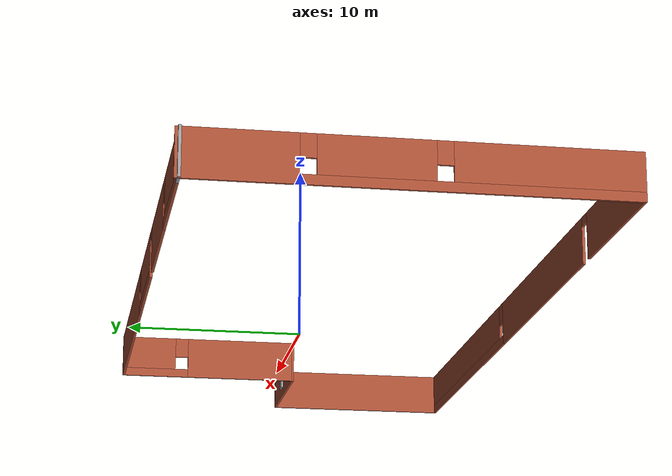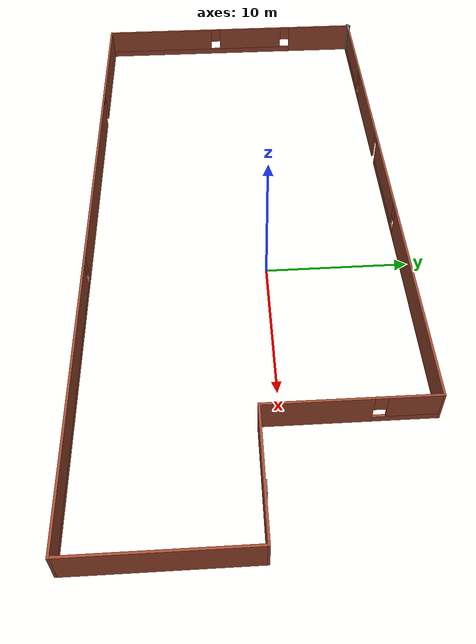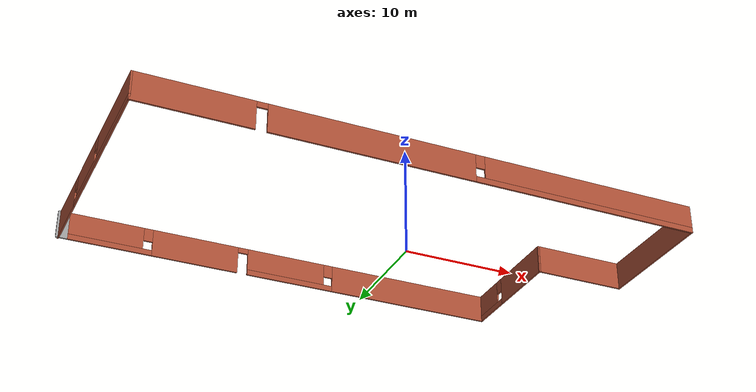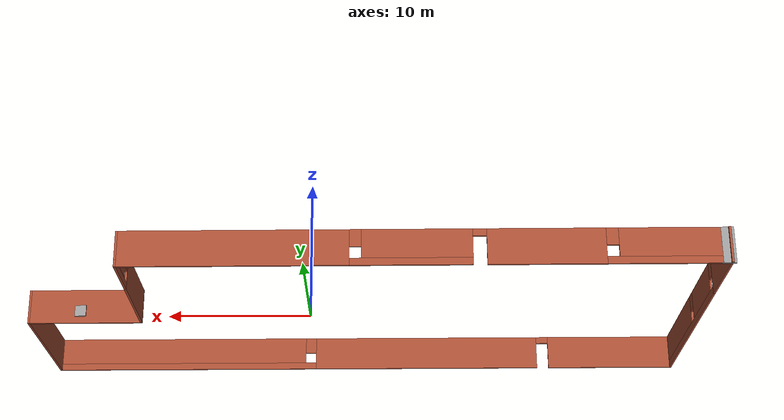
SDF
<?xml version='1.0'?>
<sdf version='1.6'>
  <model name='myworld'>
    <pose frame=''>-3.72226 -1.35739 0 0 -0 0</pose>
    <link name='Wall_1'>
      <pose frame=''>-23.825 0 0 0 0 -1.5708</pose>
      <visual name='Wall_1_Visual_0'>
        <pose frame=''>-8.24495 0 1.25 0 -0 0</pose>
        <geometry>
          <box>
            <size>5.76011 0.15 2.5</size>
          </box>
        </geometry>
        <material>
          <script>
            <uri>file://media/materials/scripts/gazebo.material</uri>
            <name>Gazebo/Bricks</name>
          </script>
          <ambient>1 1 1 1</ambient>
        </material>
        <meta>
          <layer>0</layer>
        </meta>
      </visual>
      <collision name='Wall_1_Collision_0'>
        <geometry>
          <box>
            <size>5.76011 0.15 2.5</size>
          </box>
        </geometry>
        <pose frame=''>-8.24495 0 1.25 0 -0 0</pose>
      </collision>
      <visual name='Wall_1_Visual_1'>
        <pose frame=''>2.88005 0 0.25 0 -0 0</pose>
        <geometry>
          <box>
            <size>16.4899 0.15 0.5</size>
          </box>
        </geometry>
        <material>
          <script>
            <uri>file://media/materials/scripts/gazebo.material</uri>
            <name>Gazebo/Bricks</name>
          </script>
          <ambient>1 1 1 1</ambient>
        </material>
        <meta>
          <layer>0</layer>
        </meta>
      </visual>
      <collision name='Wall_1_Collision_1'>
        <geometry>
          <box>
            <size>16.4899 0.15 0.5</size>
          </box>
        </geometry>
        <pose frame=''>2.88005 0 0.25 0 -0 0</pose>
      </collision>
      <visual name='Wall_1_Visual_2'>
        <pose frame=''>-1.74545 0 1.5 0 -0 0</pose>
        <geometry>
          <box>
            <size>5.63889 0.15 2</size>
          </box>
        </geometry>
        <material>
          <script>
            <uri>file://media/materials/scripts/gazebo.material</uri>
            <name>Gazebo/Bricks</name>
          </script>
          <ambient>1 1 1 1</ambient>
        </material>
        <meta>
          <layer>0</layer>
        </meta>
      </visual>
      <collision name='Wall_1_Collision_2'>
        <geometry>
          <box>
            <size>5.63889 0.15 2</size>
          </box>
        </geometry>
        <pose frame=''>-1.74545 0 1.5 0 -0 0</pose>
      </collision>
      <visual name='Wall_1_Visual_3'>
        <pose frame=''>6.4995 0 1.5 0 -0 0</pose>
        <geometry>
          <box>
            <size>9.251 0.15 2</size>
          </box>
        </geometry>
        <material>
          <script>
            <uri>file://media/materials/scripts/gazebo.material</uri>
            <name>Gazebo/Bricks</name>
          </script>
          <ambient>1 1 1 1</ambient>
        </material>
        <meta>
          <layer>0</layer>
        </meta>
      </visual>
      <collision name='Wall_1_Collision_3'>
        <geometry>
          <box>
            <size>9.251 0.15 2</size>
          </box>
        </geometry>
        <pose frame=''>6.4995 0 1.5 0 -0 0</pose>
      </collision>
      <visual name='Wall_1_Visual_4'>
        <pose frame=''>-4.96489 0 1.9 0 -0 0</pose>
        <geometry>
          <box>
            <size>0.8 0.15 1.2</size>
          </box>
        </geometry>
        <material>
          <script>
            <uri>file://media/materials/scripts/gazebo.material</uri>
            <name>Gazebo/Bricks</name>
          </script>
          <ambient>1 1 1 1</ambient>
        </material>
        <meta>
          <layer>0</layer>
        </meta>
      </visual>
      <collision name='Wall_1_Collision_4'>
        <geometry>
          <box>
            <size>0.8 0.15 1.2</size>
          </box>
        </geometry>
        <pose frame=''>-4.96489 0 1.9 0 -0 0</pose>
      </collision>
      <visual name='Wall_1_Visual_5'>
        <pose frame=''>1.474 0 1.9 0 -0 0</pose>
        <geometry>
          <box>
            <size>0.8 0.15 1.2</size>
          </box>
        </geometry>
        <material>
          <script>
            <uri>file://media/materials/scripts/gazebo.material</uri>
            <name>Gazebo/Bricks</name>
          </script>
          <ambient>1 1 1 1</ambient>
        </material>
        <meta>
          <layer>0</layer>
        </meta>
      </visual>
      <collision name='Wall_1_Collision_5'>
        <geometry>
          <box>
            <size>0.8 0.15 1.2</size>
          </box>
        </geometry>
        <pose frame=''>1.474 0 1.9 0 -0 0</pose>
      </collision>
    </link>
    <link name='Wall_2'>
      <pose frame=''>0.099999 -11.05 0 0 -0 0</pose>
      <visual name='Wall_2_Visual_0'>
        <pose frame=''>-19.1991 0 1.25 0 -0 0</pose>
        <geometry>
          <box>
            <size>9.60175 0.15 2.5</size>
          </box>
        </geometry>
        <material>
          <script>
            <uri>file://media/materials/scripts/gazebo.material</uri>
            <name>Gazebo/Bricks</name>
          </script>
          <ambient>1 1 1 1</ambient>
        </material>
        <meta>
          <layer>0</layer>
        </meta>
      </visual>
      <collision name='Wall_2_Collision_0'>
        <geometry>
          <box>
            <size>9.60175 0.15 2.5</size>
          </box>
        </geometry>
        <pose frame=''>-19.1991 0 1.25 0 -0 0</pose>
      </collision>
      <visual name='Wall_2_Visual_1'>
        <pose frame=''>-4.83097 0 1.25 0 -0 0</pose>
        <geometry>
          <box>
            <size>17.3346 0.15 2.5</size>
          </box>
        </geometry>
        <material>
          <script>
            <uri>file://media/materials/scripts/gazebo.material</uri>
            <name>Gazebo/Bricks</name>
          </script>
          <ambient>1 1 1 1</ambient>
        </material>
        <meta>
          <layer>0</layer>
        </meta>
      </visual>
      <collision name='Wall_2_Collision_1'>
        <geometry>
          <box>
            <size>17.3346 0.15 2.5</size>
          </box>
        </geometry>
        <pose frame=''>-4.83097 0 1.25 0 -0 0</pose>
      </collision>
      <visual name='Wall_2_Visual_2'>
        <pose frame=''>13.9182 0 0.25 0 -0 0</pose>
        <geometry>
          <box>
            <size>20.1637 0.15 0.5</size>
          </box>
        </geometry>
        <material>
          <script>
            <uri>file://media/materials/scripts/gazebo.material</uri>
            <name>Gazebo/Bricks</name>
          </script>
          <ambient>1 1 1 1</ambient>
        </material>
        <meta>
          <layer>0</layer>
        </meta>
      </visual>
      <collision name='Wall_2_Collision_2'>
        <geometry>
          <box>
            <size>20.1637 0.15 0.5</size>
          </box>
        </geometry>
        <pose frame=''>13.9182 0 0.25 0 -0 0</pose>
      </collision>
      <visual name='Wall_2_Visual_3'>
        <pose frame=''>14.3182 0 1.5 0 -0 0</pose>
        <geometry>
          <box>
            <size>19.3637 0.15 2</size>
          </box>
        </geometry>
        <material>
          <script>
            <uri>file://media/materials/scripts/gazebo.material</uri>
            <name>Gazebo/Bricks</name>
          </script>
          <ambient>1 1 1 1</ambient>
        </material>
        <meta>
          <layer>0</layer>
        </meta>
      </visual>
      <collision name='Wall_2_Collision_3'>
        <geometry>
          <box>
            <size>19.3637 0.15 2</size>
          </box>
        </geometry>
        <pose frame=''>14.3182 0 1.5 0 -0 0</pose>
      </collision>
      <visual name='Wall_2_Visual_4'>
        <pose frame=''>4.23631 0 1.9 0 -0 0</pose>
        <geometry>
          <box>
            <size>0.8 0.15 1.2</size>
          </box>
        </geometry>
        <material>
          <script>
            <uri>file://media/materials/scripts/gazebo.material</uri>
            <name>Gazebo/Bricks</name>
          </script>
          <ambient>1 1 1 1</ambient>
        </material>
        <meta>
          <layer>0</layer>
        </meta>
      </visual>
      <collision name='Wall_2_Collision_4'>
        <geometry>
          <box>
            <size>0.8 0.15 1.2</size>
          </box>
        </geometry>
        <pose frame=''>4.23631 0 1.9 0 -0 0</pose>
      </collision>
      <visual name='Wall_2_Visual_5'>
        <pose frame=''>-13.9483 0 2.25 0 -0 0</pose>
        <geometry>
          <box>
            <size>0.9 0.15 0.5</size>
          </box>
        </geometry>
        <material>
          <script>
            <uri>file://media/materials/scripts/gazebo.material</uri>
            <name>Gazebo/Bricks</name>
          </script>
          <ambient>1 1 1 1</ambient>
        </material>
        <meta>
          <layer>0</layer>
        </meta>
      </visual>
      <collision name='Wall_2_Collision_5'>
        <geometry>
          <box>
            <size>0.9 0.15 0.5</size>
          </box>
        </geometry>
        <pose frame=''>-13.9483 0 2.25 0 -0 0</pose>
      </collision>
    </link>
    <link name='Wall_3'>
      <collision name='Wall_3_Collision'>
        <geometry>
          <box>
            <size>11.25 0.15 2.5</size>
          </box>
        </geometry>
        <pose frame=''>0 0 1.25 0 -0 0</pose>
      </collision>
      <visual name='Wall_3_Visual'>
        <pose frame=''>0 0 1.25 0 -0 0</pose>
        <geometry>
          <box>
            <size>11.25 0.15 2.5</size>
          </box>
        </geometry>
        <material>
          <script>
            <uri>file://media/materials/scripts/gazebo.material</uri>
            <name>Gazebo/Bricks</name>
          </script>
          <ambient>1 1 1 1</ambient>
        </material>
        <meta>
          <layer>0</layer>
        </meta>
      </visual>
      <pose frame=''>24.025 -5.5 0 0 -0 1.5708</pose>
    </link>
    <link name='Wall_4'>
      <collision name='Wall_4_Collision'>
        <geometry>
          <box>
            <size>8.25 0.15 2.5</size>
          </box>
        </geometry>
        <pose frame=''>0 0 1.25 0 -0 0</pose>
      </collision>
      <visual name='Wall_4_Visual'>
        <pose frame=''>0 0 1.25 0 -0 0</pose>
        <geometry>
          <box>
            <size>8.25 0.15 2.5</size>
          </box>
        </geometry>
        <material>
          <script>
            <uri>file://media/materials/scripts/gazebo.material</uri>
            <name>Gazebo/Bricks</name>
          </script>
          <ambient>1 1 1 1</ambient>
        </material>
        <meta>
          <layer>0</layer>
        </meta>
      </visual>
      <pose frame=''>19.975 0.05 0 0 -0 3.14159</pose>
    </link>
    <link name='Wall_5'>
      <pose frame=''>15.925 5.475 0 0 -0 1.5708</pose>
      <visual name='Wall_5_Visual_0'>
        <pose frame=''>-2.07294 0 1.25 0 -0 0</pose>
        <geometry>
          <box>
            <size>6.85412 0.15 2.5</size>
          </box>
        </geometry>
        <material>
          <script>
            <uri>file://media/materials/scripts/gazebo.material</uri>
            <name>Gazebo/Bricks</name>
          </script>
          <ambient>1 1 1 1</ambient>
        </material>
        <meta>
          <layer>0</layer>
        </meta>
      </visual>
      <collision name='Wall_5_Collision_0'>
        <geometry>
          <box>
            <size>6.85412 0.15 2.5</size>
          </box>
        </geometry>
        <pose frame=''>-2.07294 0 1.25 0 -0 0</pose>
      </collision>
      <visual name='Wall_5_Visual_1'>
        <pose frame=''>3.42706 0 0.25 0 -0 0</pose>
        <geometry>
          <box>
            <size>4.14588 0.15 0.5</size>
          </box>
        </geometry>
        <material>
          <script>
            <uri>file://media/materials/scripts/gazebo.material</uri>
            <name>Gazebo/Bricks</name>
          </script>
          <ambient>1 1 1 1</ambient>
        </material>
        <meta>
          <layer>0</layer>
        </meta>
      </visual>
      <collision name='Wall_5_Collision_1'>
        <geometry>
          <box>
            <size>4.14588 0.15 0.5</size>
          </box>
        </geometry>
        <pose frame=''>3.42706 0 0.25 0 -0 0</pose>
      </collision>
      <visual name='Wall_5_Visual_2'>
        <pose frame=''>3.82706 0 1.5 0 -0 0</pose>
        <geometry>
          <box>
            <size>3.34588 0.15 2</size>
          </box>
        </geometry>
        <material>
          <script>
            <uri>file://media/materials/scripts/gazebo.material</uri>
            <name>Gazebo/Bricks</name>
          </script>
          <ambient>1 1 1 1</ambient>
        </material>
        <meta>
          <layer>0</layer>
        </meta>
      </visual>
      <collision name='Wall_5_Collision_2'>
        <geometry>
          <box>
            <size>3.34588 0.15 2</size>
          </box>
        </geometry>
        <pose frame=''>3.82706 0 1.5 0 -0 0</pose>
      </collision>
      <visual name='Wall_5_Visual_3'>
        <pose frame=''>1.75412 0 1.9 0 -0 0</pose>
        <geometry>
          <box>
            <size>0.8 0.15 1.2</size>
          </box>
        </geometry>
        <material>
          <script>
            <uri>file://media/materials/scripts/gazebo.material</uri>
            <name>Gazebo/Bricks</name>
          </script>
          <ambient>1 1 1 1</ambient>
        </material>
        <meta>
          <layer>0</layer>
        </meta>
      </visual>
      <collision name='Wall_5_Collision_3'>
        <geometry>
          <box>
            <size>0.8 0.15 1.2</size>
          </box>
        </geometry>
        <pose frame=''>1.75412 0 1.9 0 -0 0</pose>
      </collision>
    </link>
    <link name='Wall_6'>
      <pose frame=''>-3.625 10.9 0 0 -0 3.14159</pose>
      <visual name='Wall_6_Visual_0'>
        <pose frame=''>-12.012 0 1.25 0 -0 0</pose>
        <geometry>
          <box>
            <size>15.2261 0.15 2.5</size>
          </box>
        </geometry>
        <material>
          <script>
            <uri>file://media/materials/scripts/gazebo.material</uri>
            <name>Gazebo/Bricks</name>
          </script>
          <ambient>1 1 1 1</ambient>
        </material>
        <meta>
          <layer>0</layer>
        </meta>
      </visual>
      <collision name='Wall_6_Collision_0'>
        <geometry>
          <box>
            <size>15.2261 0.15 2.5</size>
          </box>
        </geometry>
        <pose frame=''>-12.012 0 1.25 0 -0 0</pose>
      </collision>
      <visual name='Wall_6_Visual_1'>
        <pose frame=''>8.37319 0 1.25 0 -0 0</pose>
        <geometry>
          <box>
            <size>7.7116 0.15 2.5</size>
          </box>
        </geometry>
        <material>
          <script>
            <uri>file://media/materials/scripts/gazebo.material</uri>
            <name>Gazebo/Bricks</name>
          </script>
          <ambient>1 1 1 1</ambient>
        </material>
        <meta>
          <layer>0</layer>
        </meta>
      </visual>
      <collision name='Wall_6_Collision_1'>
        <geometry>
          <box>
            <size>7.7116 0.15 2.5</size>
          </box>
        </geometry>
        <pose frame=''>8.37319 0 1.25 0 -0 0</pose>
      </collision>
      <visual name='Wall_6_Visual_2'>
        <pose frame=''>-0.390762 0 0.25 0 -0 0</pose>
        <geometry>
          <box>
            <size>8.0163 0.15 0.5</size>
          </box>
        </geometry>
        <material>
          <script>
            <uri>file://media/materials/scripts/gazebo.material</uri>
            <name>Gazebo/Bricks</name>
          </script>
          <ambient>1 1 1 1</ambient>
        </material>
        <meta>
          <layer>0</layer>
        </meta>
      </visual>
      <collision name='Wall_6_Collision_2'>
        <geometry>
          <box>
            <size>8.0163 0.15 0.5</size>
          </box>
        </geometry>
        <pose frame=''>-0.390762 0 0.25 0 -0 0</pose>
      </collision>
      <visual name='Wall_6_Visual_3'>
        <pose frame=''>15.927 0 0.25 0 -0 0</pose>
        <geometry>
          <box>
            <size>7.39601 0.15 0.5</size>
          </box>
        </geometry>
        <material>
          <script>
            <uri>file://media/materials/scripts/gazebo.material</uri>
            <name>Gazebo/Bricks</name>
          </script>
          <ambient>1 1 1 1</ambient>
        </material>
        <meta>
          <layer>0</layer>
        </meta>
      </visual>
      <collision name='Wall_6_Collision_3'>
        <geometry>
          <box>
            <size>7.39601 0.15 0.5</size>
          </box>
        </geometry>
        <pose frame=''>15.927 0 0.25 0 -0 0</pose>
      </collision>
      <visual name='Wall_6_Visual_4'>
        <pose frame=''>0.009238 0 1.5 0 -0 0</pose>
        <geometry>
          <box>
            <size>7.21631 0.15 2</size>
          </box>
        </geometry>
        <material>
          <script>
            <uri>file://media/materials/scripts/gazebo.material</uri>
            <name>Gazebo/Bricks</name>
          </script>
          <ambient>1 1 1 1</ambient>
        </material>
        <meta>
          <layer>0</layer>
        </meta>
      </visual>
      <collision name='Wall_6_Collision_4'>
        <geometry>
          <box>
            <size>7.21631 0.15 2</size>
          </box>
        </geometry>
        <pose frame=''>0.009238 0 1.5 0 -0 0</pose>
      </collision>
      <visual name='Wall_6_Visual_5'>
        <pose frame=''>0.009238 0 1.5 0 -0 0</pose>
        <geometry>
          <box>
            <size>7.21631 0.15 2</size>
          </box>
        </geometry>
        <material>
          <script>
            <uri>file://media/materials/scripts/gazebo.material</uri>
            <name>Gazebo/Bricks</name>
          </script>
          <ambient>1 1 1 1</ambient>
        </material>
        <meta>
          <layer>0</layer>
        </meta>
      </visual>
      <collision name='Wall_6_Collision_5'>
        <geometry>
          <box>
            <size>7.21631 0.15 2</size>
          </box>
        </geometry>
        <pose frame=''>0.009238 0 1.5 0 -0 0</pose>
      </collision>
      <visual name='Wall_6_Visual_6'>
        <pose frame=''>16.327 0 1.5 0 -0 0</pose>
        <geometry>
          <box>
            <size>6.59601 0.15 2</size>
          </box>
        </geometry>
        <material>
          <script>
            <uri>file://media/materials/scripts/gazebo.material</uri>
            <name>Gazebo/Bricks</name>
          </script>
          <ambient>1 1 1 1</ambient>
        </material>
        <meta>
          <layer>0</layer>
        </meta>
      </visual>
      <collision name='Wall_6_Collision_6'>
        <geometry>
          <box>
            <size>6.59601 0.15 2</size>
          </box>
        </geometry>
        <pose frame=''>16.327 0 1.5 0 -0 0</pose>
      </collision>
      <visual name='Wall_6_Visual_7'>
        <pose frame=''>-3.99891 0 1.9 0 -0 0</pose>
        <geometry>
          <box>
            <size>0.8 0.15 1.2</size>
          </box>
        </geometry>
        <material>
          <script>
            <uri>file://media/materials/scripts/gazebo.material</uri>
            <name>Gazebo/Bricks</name>
          </script>
          <ambient>1 1 1 1</ambient>
        </material>
        <meta>
          <layer>0</layer>
        </meta>
      </visual>
      <collision name='Wall_6_Collision_7'>
        <geometry>
          <box>
            <size>0.8 0.15 1.2</size>
          </box>
        </geometry>
        <pose frame=''>-3.99891 0 1.9 0 -0 0</pose>
      </collision>
      <visual name='Wall_6_Visual_8'>
        <pose frame=''>12.629 0 1.9 0 -0 0</pose>
        <geometry>
          <box>
            <size>0.8 0.15 1.2</size>
          </box>
        </geometry>
        <material>
          <script>
            <uri>file://media/materials/scripts/gazebo.material</uri>
            <name>Gazebo/Bricks</name>
          </script>
          <ambient>1 1 1 1</ambient>
        </material>
        <meta>
          <layer>0</layer>
        </meta>
      </visual>
      <collision name='Wall_6_Collision_8'>
        <geometry>
          <box>
            <size>0.8 0.15 1.2</size>
          </box>
        </geometry>
        <pose frame=''>12.629 0 1.9 0 -0 0</pose>
      </collision>
      <visual name='Wall_6_Visual_9'>
        <pose frame=''>4.06739 0 2.25 0 -0 0</pose>
        <geometry>
          <box>
            <size>0.9 0.15 0.5</size>
          </box>
        </geometry>
        <material>
          <script>
            <uri>file://media/materials/scripts/gazebo.material</uri>
            <name>Gazebo/Bricks</name>
          </script>
          <ambient>1 1 1 1</ambient>
        </material>
        <meta>
          <layer>0</layer>
        </meta>
      </visual>
      <collision name='Wall_6_Collision_9'>
        <geometry>
          <box>
            <size>0.9 0.15 0.5</size>
          </box>
        </geometry>
        <pose frame=''>4.06739 0 2.25 0 -0 0</pose>
      </collision>
      <visual name='Wall_6_Visual_10'>
        <pose frame=''>4.06739 0 2.25 0 -0 0</pose>
        <geometry>
          <box>
            <size>0.9 0.15 0.5</size>
          </box>
        </geometry>
        <material>
          <script>
            <uri>file://media/materials/scripts/gazebo.material</uri>
            <name>Gazebo/Bricks</name>
          </script>
          <ambient>1 1 1 1</ambient>
        </material>
        <meta>
          <layer>0</layer>
        </meta>
      </visual>
      <collision name='Wall_6_Collision_10'>
        <geometry>
          <box>
            <size>0.9 0.15 0.5</size>
          </box>
        </geometry>
        <pose frame=''>4.06739 0 2.25 0 -0 0</pose>
      </collision>
    </link>
    <link name='Wall_7'>
      <collision name='Wall_7_Collision'>
        <geometry>
          <box>
            <size>1 0.15 2.5</size>
          </box>
        </geometry>
        <pose frame=''>0 0 1.25 0 -0 0</pose>
      </collision>
      <visual name='Wall_7_Visual'>
        <pose frame=''>0 0 1.25 0 -0 0</pose>
        <geometry>
          <box>
            <size>1 0.15 2.5</size>
          </box>
        </geometry>
        <material>
          <script>
            <uri>file://media/materials/scripts/gazebo.material</uri>
            <name>Gazebo/Grey</name>
          </script>
          <ambient>1 1 1 1</ambient>
        </material>
        <meta>
          <layer>0</layer>
        </meta>
      </visual>
      <pose frame=''>-23.6 10.9 0 0 -0 3.14159</pose>
    </link>
    <link name='Window_3'>
      <collision name='Window_3_Collision'>
        <geometry>
          <box>
            <size>0.8 0.17 0.8</size>
          </box>
        </geometry>
        <pose frame=''>0 0 0.4 0 -0 0</pose>
      </collision>
      <visual name='Window_3_Visual'>
        <pose frame=''>0 0 0.4 0 -0 0</pose>
        <geometry>
          <box>
            <size>0.8 0.17 0.8</size>
          </box>
        </geometry>
        <material>
          <script>
            <uri>file://media/materials/scripts/gazebo.material</uri>
            <name>Gazebo/Grey</name>
          </script>
        </material>
      </visual>
      <pose frame=''>20.3274 0.153413 0.5 0 -0 0</pose>
    </link>
    <static>1</static>
  </model>
</sdf>
